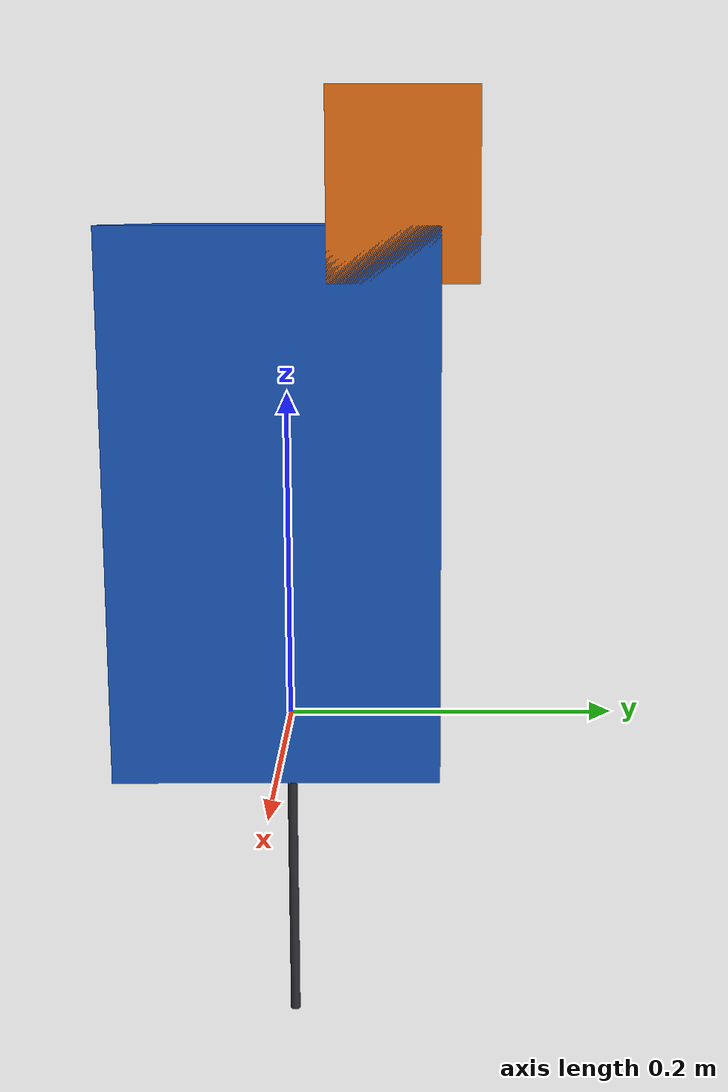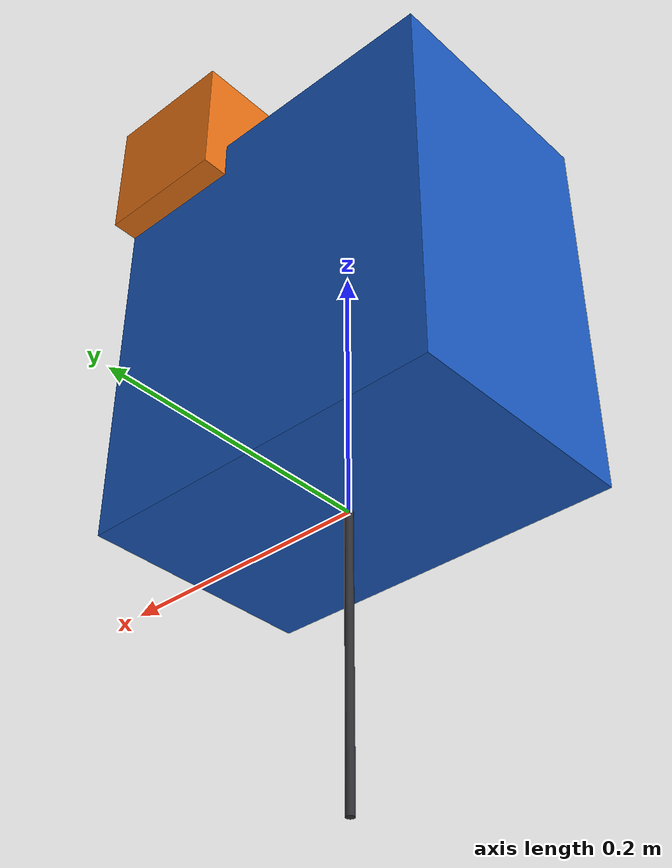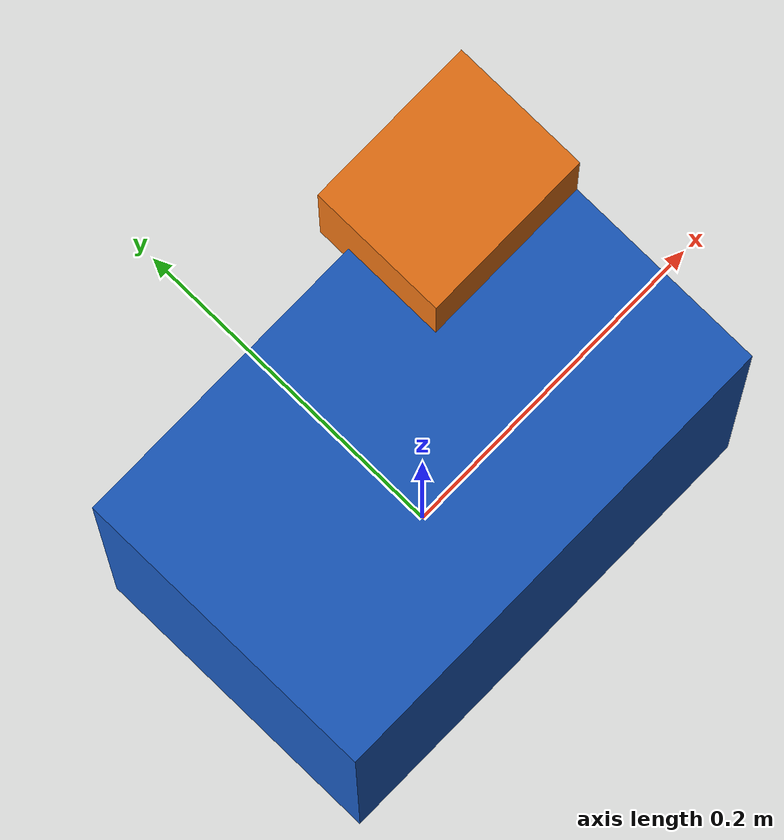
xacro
<?xml version="1.0"?>
<robot name="spray_object" xmlns:xacro="http://ros.org/wiki/xacro">

  <xacro:arg name="object_type" default="block_combo_part"/>
  <xacro:property name="type" value="$(arg object_type)"/>

  <!-- Demo color palette -->
  <material name="obj_main_blue">   <!-- big block / main body -->
    <color rgba="0.10 0.35 0.75 1"/>
  </material>
  <material name="obj_accent_orange"><!-- small block / direction feature -->
    <color rgba="0.92 0.45 0.08 1"/>
  </material>
  <material name="obj_wire_dark">   <!-- suspension wire -->
    <color rgba="0.18 0.18 0.20 1"/>
  </material>
  <material name="obj_flat_gray">   <!-- flat_panel fallback -->
    <color rgba="0.55 0.55 0.60 1"/>
  </material>
  <material name="obj_cylinder_teal"><!-- cylinder fallback -->
    <color rgba="0.15 0.55 0.55 1"/>
  </material>

  <!-- Object frame at geometric center (local origin) -->
  <link name="object_frame"/>

  <!-- ===== flat_panel ===== -->
  <xacro:if value="${type == 'flat_panel'}">
    <link name="object_body">
      <inertial><mass value="0.5"/><inertia ixx="0.005" ixy="0" ixz="0" iyy="0.005" iyz="0" izz="0.005"/></inertial>
      <visual><geometry><box size="0.30 0.02 0.30"/></geometry><material name="obj_flat_gray"/></visual>
      <collision><geometry><box size="0.30 0.02 0.30"/></geometry></collision>
    </link>
  </xacro:if>

  <!-- ===== cylinder_part ===== -->
  <xacro:if value="${type == 'cylinder_part'}">
    <link name="object_body">
      <inertial><mass value="1.0"/><inertia ixx="0.01" ixy="0" ixz="0" iyy="0.01" iyz="0" izz="0.005"/></inertial>
      <visual><origin xyz="0 0 0.175" rpy="0 0 0"/><geometry><cylinder radius="0.10" length="0.35"/></geometry><material name="obj_cylinder_teal"/></visual>
      <collision><origin xyz="0 0 0.175" rpy="0 0 0"/><geometry><cylinder radius="0.10" length="0.35"/></geometry></collision>
    </link>
  </xacro:if>

  <!-- ===== block_combo_part: big block + small block ===== -->
  <xacro:if value="${type == 'block_combo_part'}">
    <link name="object_body">
      <inertial>
        <mass value="1.2"/>
        <!-- Combined inertia estimated for two blocks -->
        <inertia ixx="0.015" ixy="0" ixz="0" iyy="0.012" iyz="0" izz="0.010"/>
        <origin xyz="0.02 0.0 0.14" rpy="0 0 0"/>
      </inertial>

      <!-- Big block: main body (blue) -->
      <!-- size: 0.28(X) × 0.18(Y) × 0.30(Z), center at z=0.15 -->
      <visual name="big_block">
        <origin xyz="0 0 0.15" rpy="0 0 0"/>
        <geometry><box size="0.28 0.18 0.30"/></geometry>
        <material name="obj_main_blue"/>
      </visual>
      <collision name="big_block_col">
        <origin xyz="0 0 0.15" rpy="0 0 0"/>
        <geometry><box size="0.28 0.18 0.30"/></geometry>
      </collision>

      <!-- Small block: direction feature (orange), attached to top-right-front -->
      <!-- size: 0.10(X) × 0.08(Y) × 0.10(Z) -->
      <!-- Position: front-right top corner of big block -->
      <visual name="small_block">
        <origin xyz="0.09 0.07 0.32" rpy="0 0 0"/>
        <geometry><box size="0.10 0.08 0.10"/></geometry>
        <material name="obj_accent_orange"/>
      </visual>
      <collision name="small_block_col">
        <origin xyz="0.09 0.07 0.32" rpy="0 0 0"/>
        <geometry><box size="0.10 0.08 0.10"/></geometry>
      </collision>
    </link>
  </xacro:if>

  <!-- ===== asymmetric_part_v2 (legacy) ===== -->
  <xacro:if value="${type == 'asymmetric_part_v2'}">
    <link name="object_body">
      <inertial><mass value="0.8"/><inertia ixx="0.008" ixy="0" ixz="0" iyy="0.008" iyz="0" izz="0.005"/><origin xyz="0.03 0.01 0.08" rpy="0 0 0"/></inertial>
      <visual name="base_block"><origin xyz="0 0 0.08" rpy="0 0 0"/><geometry><box size="0.20 0.15 0.16"/></geometry><material name="obj_main_blue"/></visual>
      <visual name="side_wing"><origin xyz="0.12 0 0.06" rpy="0 0 0.3"/><geometry><box size="0.18 0.10 0.12"/></geometry><material name="obj_accent_orange"/></visual>
      <visual name="top_nub"><origin xyz="0.02 -0.04 0.17" rpy="0 0 0"/><geometry><cylinder radius="0.04" length="0.06"/></geometry><material name="obj_accent_orange"/></visual>
      <visual name="front_notch"><origin xyz="-0.08 0.05 0.04" rpy="0 0 0"/><geometry><box size="0.05 0.06 0.08"/></geometry><material name="obj_main_blue"/></visual>
      <collision name="base_block_col"><origin xyz="0 0 0.08" rpy="0 0 0"/><geometry><box size="0.20 0.15 0.16"/></geometry></collision>
      <collision name="side_wing_col"><origin xyz="0.12 0 0.06" rpy="0 0 0.3"/><geometry><box size="0.18 0.10 0.12"/></geometry></collision>
    </link>
  </xacro:if>

  <joint name="object_frame_to_body" type="fixed">
    <parent link="object_frame"/>
    <child link="object_body"/>
  </joint>

  <!-- Visual suspension wire (dark, from object_frame up to gantry eyelet) -->
  <link name="object_wire">
    <inertial><mass value="0.01"/><inertia ixx="0.00001" ixy="0" ixz="0" iyy="0.00001" iyz="0" izz="0.00001"/></inertial>
    <visual>
      <origin xyz="0 0 -0.10" rpy="0 0 0"/>
      <geometry><cylinder radius="0.003" length="0.20"/></geometry>
      <material name="obj_wire_dark"/>
    </visual>
  </link>
  <joint name="object_frame_to_wire" type="fixed">
    <parent link="object_frame"/><child link="object_wire"/>
  </joint>

  <gazebo><static>true</static></gazebo>
</robot>
